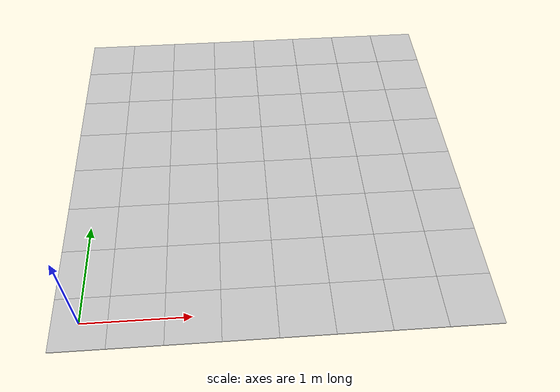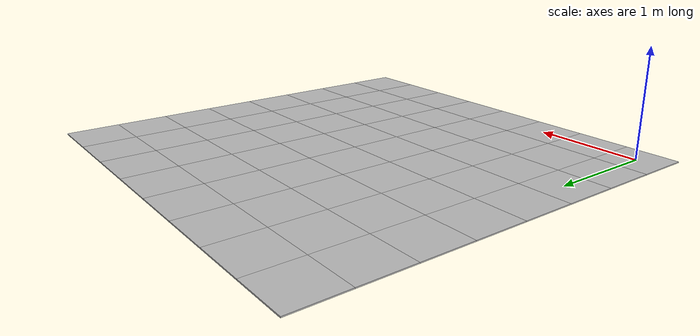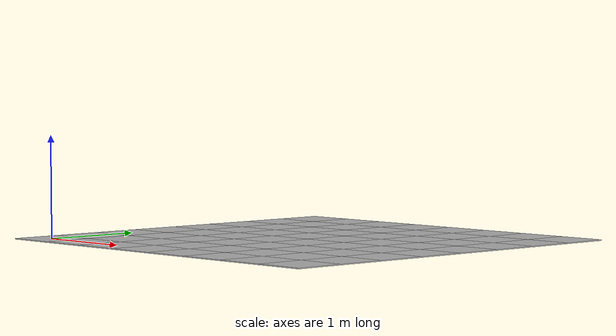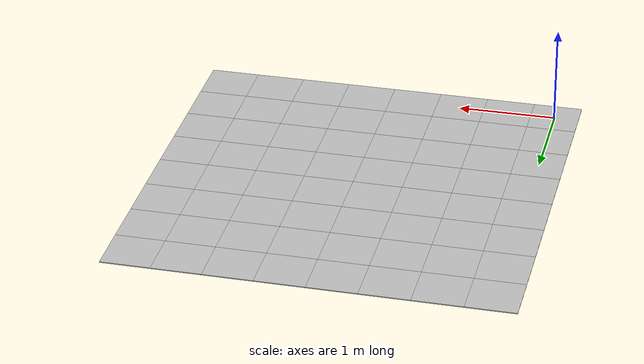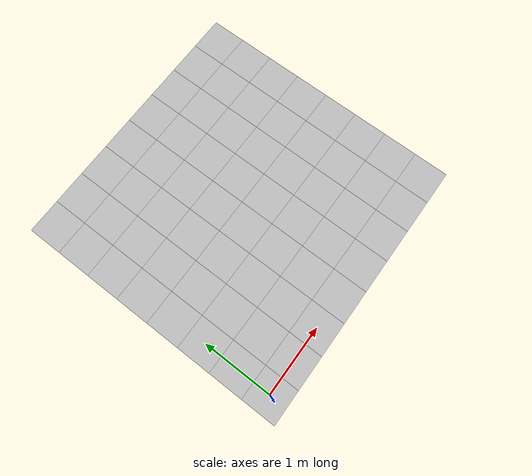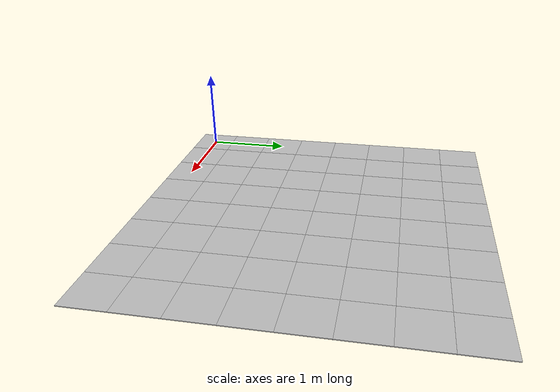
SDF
<?xml version="1.0" ?>
<sdf version="1.5">
  <model name="dia_cr5_arena">
    <static>true</static>
    <link name="link">
      <collision name="surface_collision">
        <pose>1.75 1.75 0 0 0 0 0</pose>
        <geometry>
          <box>
            <size>4.1 4.1 0.01</size>
          </box>
        </geometry>
        <surface>
          <friction>
            <ode>
              <mu>0.20</mu>
              <mu2>0.20</mu2>
            </ode>
          </friction>
        </surface>
      </collision>

      <!-- Floor -->

      <visual name="tile-1">
        <pose>0 0 0 0 0 0 0</pose>
        <geometry>
          <box>
            <size>0.5 0.5 0.01</size>
          </box>
        </geometry>
        <material>
          <script>
            <uri>model://dia_cr5_arena/materials/scripts</uri>
            <uri>model://dia_cr5_arena/materials/textures</uri>
            <name>arena_tile/Diffuse</name>
          </script>
        </material>
      </visual>

      <visual name="tile-2">
        <pose>0.5 0 0 0 0 0 0</pose>
        <geometry>
          <box>
            <size>0.5 0.5 0.01</size>
          </box>
        </geometry>
        <material>
          <script>
            <uri>model://dia_cr5_arena/materials/scripts</uri>
            <uri>model://dia_cr5_arena/materials/textures</uri>
            <name>arena_tile/Diffuse</name>
          </script>
        </material>
      </visual>

      <visual name="tile-3">
        <pose>1 0 0 0 0 0 0</pose>
        <geometry>
          <box>
            <size>0.5 0.5 0.01</size>
          </box>
        </geometry>
        <material>
          <script>
            <uri>model://dia_cr5_arena/materials/scripts</uri>
            <uri>model://dia_cr5_arena/materials/textures</uri>
            <name>arena_tile/Diffuse</name>
          </script>
        </material>
      </visual>

      <visual name="tile-4">
        <pose>1.5 0 0 0 0 0 0</pose>
        <geometry>
          <box>
            <size>0.5 0.5 0.01</size>
          </box>
        </geometry>
        <material>
          <script>
            <uri>model://dia_cr5_arena/materials/scripts</uri>
            <uri>model://dia_cr5_arena/materials/textures</uri>
            <name>arena_tile/Diffuse</name>
          </script>
        </material>
      </visual>

      <visual name="tile-5">
        <pose>2 0 0 0 0 0 0</pose>
        <geometry>
          <box>
            <size>0.5 0.5 0.01</size>
          </box>
        </geometry>
        <material>
          <script>
            <uri>model://dia_cr5_arena/materials/scripts</uri>
            <uri>model://dia_cr5_arena/materials/textures</uri>
            <name>arena_tile/Diffuse</name>
          </script>
        </material>
      </visual>

      <visual name="tile-6">
        <pose>2.5 0 0 0 0 0 0</pose>
        <geometry>
          <box>
            <size>0.5 0.5 0.01</size>
          </box>
        </geometry>
        <material>
          <script>
            <uri>model://dia_cr5_arena/materials/scripts</uri>
            <uri>model://dia_cr5_arena/materials/textures</uri>
            <name>arena_tile/Diffuse</name>
          </script>
        </material>
      </visual>

      <visual name="tile-7">
        <pose>3 0 0 0 0 0 0</pose>
        <geometry>
          <box>
            <size>0.5 0.5 0.01</size>
          </box>
        </geometry>
        <material>
          <script>
            <uri>model://dia_cr5_arena/materials/scripts</uri>
            <uri>model://dia_cr5_arena/materials/textures</uri>
            <name>arena_tile/Diffuse</name>
          </script>
        </material>
      </visual>

      <visual name="tile-8">
        <pose>3.5 0 0 0 0 0 0</pose>
        <geometry>
          <box>
            <size>0.5 0.5 0.01</size>
          </box>
        </geometry>
        <material>
          <script>
            <uri>model://dia_cr5_arena/materials/scripts</uri>
            <uri>model://dia_cr5_arena/materials/textures</uri>
            <name>arena_tile/Diffuse</name>
          </script>
        </material>
      </visual>

      <visual name="tile-9">
        <pose>0 0.5 0 0 0 0 0</pose>
        <geometry>
          <box>
            <size>0.5 0.5 0.01</size>
          </box>
        </geometry>
        <material>
          <script>
            <uri>model://dia_cr5_arena/materials/scripts</uri>
            <uri>model://dia_cr5_arena/materials/textures</uri>
            <name>arena_tile/Diffuse</name>
          </script>
        </material>
      </visual>

      <visual name="tile-10">
        <pose>0.5 0.5 0 0 0 0 0</pose>
        <geometry>
          <box>
            <size>0.5 0.5 0.01</size>
          </box>
        </geometry>
        <material>
          <script>
            <uri>model://dia_cr5_arena/materials/scripts</uri>
            <uri>model://dia_cr5_arena/materials/textures</uri>
            <name>arena_tile/Diffuse</name>
          </script>
        </material>
      </visual>

      <visual name="tile-11">
        <pose>1 0.5 0 0 0 0 0</pose>
        <geometry>
          <box>
            <size>0.5 0.5 0.01</size>
          </box>
        </geometry>
        <material>
          <script>
            <uri>model://dia_cr5_arena/materials/scripts</uri>
            <uri>model://dia_cr5_arena/materials/textures</uri>
            <name>arena_tile/Diffuse</name>
          </script>
        </material>
      </visual>

      <visual name="tile-12">
        <pose>1.5 0.5 0 0 0 0 0</pose>
        <geometry>
          <box>
            <size>0.5 0.5 0.01</size>
          </box>
        </geometry>
        <material>
          <script>
            <uri>model://dia_cr5_arena/materials/scripts</uri>
            <uri>model://dia_cr5_arena/materials/textures</uri>
            <name>arena_tile/Diffuse</name>
          </script>
        </material>
      </visual>

      <visual name="tile-13">
        <pose>2 0.5 0 0 0 0 0</pose>
        <geometry>
          <box>
            <size>0.5 0.5 0.01</size>
          </box>
        </geometry>
        <material>
          <script>
            <uri>model://dia_cr5_arena/materials/scripts</uri>
            <uri>model://dia_cr5_arena/materials/textures</uri>
            <name>arena_tile/Diffuse</name>
          </script>
        </material>
      </visual>

      <visual name="tile-14">
        <pose>2.5 0.5 0 0 0 0 0</pose>
        <geometry>
          <box>
            <size>0.5 0.5 0.01</size>
          </box>
        </geometry>
        <material>
          <script>
            <uri>model://dia_cr5_arena/materials/scripts</uri>
            <uri>model://dia_cr5_arena/materials/textures</uri>
            <name>arena_tile/Diffuse</name>
          </script>
        </material>
      </visual>

      <visual name="tile-15">
        <pose>3 0.5 0 0 0 0 0</pose>
        <geometry>
          <box>
            <size>0.5 0.5 0.01</size>
          </box>
        </geometry>
        <material>
          <script>
            <uri>model://dia_cr5_arena/materials/scripts</uri>
            <uri>model://dia_cr5_arena/materials/textures</uri>
            <name>arena_tile/Diffuse</name>
          </script>
        </material>
      </visual>

      <visual name="tile-16">
        <pose>3.5 0.5 0 0 0 0 0</pose>
        <geometry>
          <box>
            <size>0.5 0.5 0.01</size>
          </box>
        </geometry>
        <material>
          <script>
            <uri>model://dia_cr5_arena/materials/scripts</uri>
            <uri>model://dia_cr5_arena/materials/textures</uri>
            <name>arena_tile/Diffuse</name>
          </script>
        </material>
      </visual>

      <visual name="tile-17">
        <pose>0 1 0 0 0 0 0</pose>
        <geometry>
          <box>
            <size>0.5 0.5 0.01</size>
          </box>
        </geometry>
        <material>
          <script>
            <uri>model://dia_cr5_arena/materials/scripts</uri>
            <uri>model://dia_cr5_arena/materials/textures</uri>
            <name>arena_tile/Diffuse</name>
          </script>
        </material>
      </visual>

      <visual name="tile-18">
        <pose>0.5 1 0 0 0 0 0</pose>
        <geometry>
          <box>
            <size>0.5 0.5 0.01</size>
          </box>
        </geometry>
        <material>
          <script>
            <uri>model://dia_cr5_arena/materials/scripts</uri>
            <uri>model://dia_cr5_arena/materials/textures</uri>
            <name>arena_tile/Diffuse</name>
          </script>
        </material>
      </visual>

      <visual name="tile-19">
        <pose>1 1 0 0 0 0 0</pose>
        <geometry>
          <box>
            <size>0.5 0.5 0.01</size>
          </box>
        </geometry>
        <material>
          <script>
            <uri>model://dia_cr5_arena/materials/scripts</uri>
            <uri>model://dia_cr5_arena/materials/textures</uri>
            <name>arena_tile/Diffuse</name>
          </script>
        </material>
      </visual>

      <visual name="tile-20">
        <pose>1.5 1 0 0 0 0 0</pose>
        <geometry>
          <box>
            <size>0.5 0.5 0.01</size>
          </box>
        </geometry>
        <material>
          <script>
            <uri>model://dia_cr5_arena/materials/scripts</uri>
            <uri>model://dia_cr5_arena/materials/textures</uri>
            <name>arena_tile/Diffuse</name>
          </script>
        </material>
      </visual>

      <visual name="tile-21">
        <pose>2 1 0 0 0 0 0</pose>
        <geometry>
          <box>
            <size>0.5 0.5 0.01</size>
          </box>
        </geometry>
        <material>
          <script>
            <uri>model://dia_cr5_arena/materials/scripts</uri>
            <uri>model://dia_cr5_arena/materials/textures</uri>
            <name>arena_tile/Diffuse</name>
          </script>
        </material>
      </visual>

      <visual name="tile-22">
        <pose>2.5 1 0 0 0 0 0</pose>
        <geometry>
          <box>
            <size>0.5 0.5 0.01</size>
          </box>
        </geometry>
        <material>
          <script>
            <uri>model://dia_cr5_arena/materials/scripts</uri>
            <uri>model://dia_cr5_arena/materials/textures</uri>
            <name>arena_tile/Diffuse</name>
          </script>
        </material>
      </visual>

      <visual name="tile-23">
        <pose>3 1 0 0 0 0 0</pose>
        <geometry>
          <box>
            <size>0.5 0.5 0.01</size>
          </box>
        </geometry>
        <material>
          <script>
            <uri>model://dia_cr5_arena/materials/scripts</uri>
            <uri>model://dia_cr5_arena/materials/textures</uri>
            <name>arena_tile/Diffuse</name>
          </script>
        </material>
      </visual>

      <visual name="tile-24">
        <pose>3.5 1 0 0 0 0 0</pose>
        <geometry>
          <box>
            <size>0.5 0.5 0.01</size>
          </box>
        </geometry>
        <material>
          <script>
            <uri>model://dia_cr5_arena/materials/scripts</uri>
            <uri>model://dia_cr5_arena/materials/textures</uri>
            <name>arena_tile/Diffuse</name>
          </script>
        </material>
      </visual>

      <visual name="tile-25">
        <pose>0 1.5 0 0 0 0 0</pose>
        <geometry>
          <box>
            <size>0.5 0.5 0.01</size>
          </box>
        </geometry>
        <material>
          <script>
            <uri>model://dia_cr5_arena/materials/scripts</uri>
            <uri>model://dia_cr5_arena/materials/textures</uri>
            <name>arena_tile/Diffuse</name>
          </script>
        </material>
      </visual>

      <visual name="tile-26">
        <pose>0.5 1.5 0 0 0 0 0</pose>
        <geometry>
          <box>
            <size>0.5 0.5 0.01</size>
          </box>
        </geometry>
        <material>
          <script>
            <uri>model://dia_cr5_arena/materials/scripts</uri>
            <uri>model://dia_cr5_arena/materials/textures</uri>
            <name>arena_tile/Diffuse</name>
          </script>
        </material>
      </visual>

      <visual name="tile-27">
        <pose>1 1.5 0 0 0 0 0</pose>
        <geometry>
          <box>
            <size>0.5 0.5 0.01</size>
          </box>
        </geometry>
        <material>
          <script>
            <uri>model://dia_cr5_arena/materials/scripts</uri>
            <uri>model://dia_cr5_arena/materials/textures</uri>
            <name>arena_tile/Diffuse</name>
          </script>
        </material>
      </visual>

      <visual name="tile-28">
        <pose>1.5 1.5 0 0 0 0 0</pose>
        <geometry>
          <box>
            <size>0.5 0.5 0.01</size>
          </box>
        </geometry>
        <material>
          <script>
            <uri>model://dia_cr5_arena/materials/scripts</uri>
            <uri>model://dia_cr5_arena/materials/textures</uri>
            <name>arena_tile/Diffuse</name>
          </script>
        </material>
      </visual>

      <visual name="tile-29">
        <pose>2 1.5 0 0 0 0 0</pose>
        <geometry>
          <box>
            <size>0.5 0.5 0.01</size>
          </box>
        </geometry>
        <material>
          <script>
            <uri>model://dia_cr5_arena/materials/scripts</uri>
            <uri>model://dia_cr5_arena/materials/textures</uri>
            <name>arena_tile/Diffuse</name>
          </script>
        </material>
      </visual>

      <visual name="tile-30">
        <pose>2.5 1.5 0 0 0 0 0</pose>
        <geometry>
          <box>
            <size>0.5 0.5 0.01</size>
          </box>
        </geometry>
        <material>
          <script>
            <uri>model://dia_cr5_arena/materials/scripts</uri>
            <uri>model://dia_cr5_arena/materials/textures</uri>
            <name>arena_tile/Diffuse</name>
          </script>
        </material>
      </visual>

      <visual name="tile-31">
        <pose>3 1.5 0 0 0 0 0</pose>
        <geometry>
          <box>
            <size>0.5 0.5 0.01</size>
          </box>
        </geometry>
        <material>
          <script>
            <uri>model://dia_cr5_arena/materials/scripts</uri>
            <uri>model://dia_cr5_arena/materials/textures</uri>
            <name>arena_tile/Diffuse</name>
          </script>
        </material>
      </visual>

      <visual name="tile-32">
        <pose>3.5 1.5 0 0 0 0 0</pose>
        <geometry>
          <box>
            <size>0.5 0.5 0.01</size>
          </box>
        </geometry>
        <material>
          <script>
            <uri>model://dia_cr5_arena/materials/scripts</uri>
            <uri>model://dia_cr5_arena/materials/textures</uri>
            <name>arena_tile/Diffuse</name>
          </script>
        </material>
      </visual>

      <visual name="tile-33">
        <pose>0 2 0 0 0 0 0</pose>
        <geometry>
          <box>
            <size>0.5 0.5 0.01</size>
          </box>
        </geometry>
        <material>
          <script>
            <uri>model://dia_cr5_arena/materials/scripts</uri>
            <uri>model://dia_cr5_arena/materials/textures</uri>
            <name>arena_tile/Diffuse</name>
          </script>
        </material>
      </visual>

      <visual name="tile-34">
        <pose>0.5 2 0 0 0 0 0</pose>
        <geometry>
          <box>
            <size>0.5 0.5 0.01</size>
          </box>
        </geometry>
        <material>
          <script>
            <uri>model://dia_cr5_arena/materials/scripts</uri>
            <uri>model://dia_cr5_arena/materials/textures</uri>
            <name>arena_tile/Diffuse</name>
          </script>
        </material>
      </visual>

      <visual name="tile-35">
        <pose>1 2 0 0 0 0 0</pose>
        <geometry>
          <box>
            <size>0.5 0.5 0.01</size>
          </box>
        </geometry>
        <material>
          <script>
            <uri>model://dia_cr5_arena/materials/scripts</uri>
            <uri>model://dia_cr5_arena/materials/textures</uri>
            <name>arena_tile/Diffuse</name>
          </script>
        </material>
      </visual>

      <visual name="tile-36">
        <pose>1.5 2 0 0 0 0 0</pose>
        <geometry>
          <box>
            <size>0.5 0.5 0.01</size>
          </box>
        </geometry>
        <material>
          <script>
            <uri>model://dia_cr5_arena/materials/scripts</uri>
            <uri>model://dia_cr5_arena/materials/textures</uri>
            <name>arena_tile/Diffuse</name>
          </script>
        </material>
      </visual>

      <visual name="tile-37">
        <pose>2 2 0 0 0 0 0</pose>
        <geometry>
          <box>
            <size>0.5 0.5 0.01</size>
          </box>
        </geometry>
        <material>
          <script>
            <uri>model://dia_cr5_arena/materials/scripts</uri>
            <uri>model://dia_cr5_arena/materials/textures</uri>
            <name>arena_tile/Diffuse</name>
          </script>
        </material>
      </visual>

      <visual name="tile-38">
        <pose>2.5 2 0 0 0 0 0</pose>
        <geometry>
          <box>
            <size>0.5 0.5 0.01</size>
          </box>
        </geometry>
        <material>
          <script>
            <uri>model://dia_cr5_arena/materials/scripts</uri>
            <uri>model://dia_cr5_arena/materials/textures</uri>
            <name>arena_tile/Diffuse</name>
          </script>
        </material>
      </visual>

      <visual name="tile-39">
        <pose>3 2 0 0 0 0 0</pose>
        <geometry>
          <box>
            <size>0.5 0.5 0.01</size>
          </box>
        </geometry>
        <material>
          <script>
            <uri>model://dia_cr5_arena/materials/scripts</uri>
            <uri>model://dia_cr5_arena/materials/textures</uri>
            <name>arena_tile/Diffuse</name>
          </script>
        </material>
      </visual>

      <visual name="tile-40">
        <pose>3.5 2 0 0 0 0 0</pose>
        <geometry>
          <box>
            <size>0.5 0.5 0.01</size>
          </box>
        </geometry>
        <material>
          <script>
            <uri>model://dia_cr5_arena/materials/scripts</uri>
            <uri>model://dia_cr5_arena/materials/textures</uri>
            <name>arena_tile/Diffuse</name>
          </script>
        </material>
      </visual>

      <visual name="tile-41">
        <pose>0 2.5 0 0 0 0 0</pose>
        <geometry>
          <box>
            <size>0.5 0.5 0.01</size>
          </box>
        </geometry>
        <material>
          <script>
            <uri>model://dia_cr5_arena/materials/scripts</uri>
            <uri>model://dia_cr5_arena/materials/textures</uri>
            <name>arena_tile/Diffuse</name>
          </script>
        </material>
      </visual>

      <visual name="tile-42">
        <pose>0.5 2.5 0 0 0 0 0</pose>
        <geometry>
          <box>
            <size>0.5 0.5 0.01</size>
          </box>
        </geometry>
        <material>
          <script>
            <uri>model://dia_cr5_arena/materials/scripts</uri>
            <uri>model://dia_cr5_arena/materials/textures</uri>
            <name>arena_tile/Diffuse</name>
          </script>
        </material>
      </visual>

      <visual name="tile-43">
        <pose>1 2.5 0 0 0 0 0</pose>
        <geometry>
          <box>
            <size>0.5 0.5 0.01</size>
          </box>
        </geometry>
        <material>
          <script>
            <uri>model://dia_cr5_arena/materials/scripts</uri>
            <uri>model://dia_cr5_arena/materials/textures</uri>
            <name>arena_tile/Diffuse</name>
          </script>
        </material>
      </visual>

      <visual name="tile-44">
        <pose>1.5 2.5 0 0 0 0 0</pose>
        <geometry>
          <box>
            <size>0.5 0.5 0.01</size>
          </box>
        </geometry>
        <material>
          <script>
            <uri>model://dia_cr5_arena/materials/scripts</uri>
            <uri>model://dia_cr5_arena/materials/textures</uri>
            <name>arena_tile/Diffuse</name>
          </script>
        </material>
      </visual>

      <visual name="tile-45">
        <pose>2 2.5 0 0 0 0 0</pose>
        <geometry>
          <box>
            <size>0.5 0.5 0.01</size>
          </box>
        </geometry>
        <material>
          <script>
            <uri>model://dia_cr5_arena/materials/scripts</uri>
            <uri>model://dia_cr5_arena/materials/textures</uri>
            <name>arena_tile/Diffuse</name>
          </script>
        </material>
      </visual>

      <visual name="tile-46">
        <pose>2.5 2.5 0 0 0 0 0</pose>
        <geometry>
          <box>
            <size>0.5 0.5 0.01</size>
          </box>
        </geometry>
        <material>
          <script>
            <uri>model://dia_cr5_arena/materials/scripts</uri>
            <uri>model://dia_cr5_arena/materials/textures</uri>
            <name>arena_tile/Diffuse</name>
          </script>
        </material>
      </visual>

      <visual name="tile-47">
        <pose>3 2.5 0 0 0 0 0</pose>
        <geometry>
          <box>
            <size>0.5 0.5 0.01</size>
          </box>
        </geometry>
        <material>
          <script>
            <uri>model://dia_cr5_arena/materials/scripts</uri>
            <uri>model://dia_cr5_arena/materials/textures</uri>
            <name>arena_tile/Diffuse</name>
          </script>
        </material>
      </visual>

      <visual name="tile-48">
        <pose>3.5 2.5 0 0 0 0 0</pose>
        <geometry>
          <box>
            <size>0.5 0.5 0.01</size>
          </box>
        </geometry>
        <material>
          <script>
            <uri>model://dia_cr5_arena/materials/scripts</uri>
            <uri>model://dia_cr5_arena/materials/textures</uri>
            <name>arena_tile/Diffuse</name>
          </script>
        </material>
      </visual>

      <visual name="tile-49">
        <pose>0 3 0 0 0 0 0</pose>
        <geometry>
          <box>
            <size>0.5 0.5 0.01</size>
          </box>
        </geometry>
        <material>
          <script>
            <uri>model://dia_cr5_arena/materials/scripts</uri>
            <uri>model://dia_cr5_arena/materials/textures</uri>
            <name>arena_tile/Diffuse</name>
          </script>
        </material>
      </visual>

      <visual name="tile-50">
        <pose>0.5 3 0 0 0 0 0</pose>
        <geometry>
          <box>
            <size>0.5 0.5 0.01</size>
          </box>
        </geometry>
        <material>
          <script>
            <uri>model://dia_cr5_arena/materials/scripts</uri>
            <uri>model://dia_cr5_arena/materials/textures</uri>
            <name>arena_tile/Diffuse</name>
          </script>
        </material>
      </visual>

      <visual name="tile-51">
        <pose>1 3 0 0 0 0 0</pose>
        <geometry>
          <box>
            <size>0.5 0.5 0.01</size>
          </box>
        </geometry>
        <material>
          <script>
            <uri>model://dia_cr5_arena/materials/scripts</uri>
            <uri>model://dia_cr5_arena/materials/textures</uri>
            <name>arena_tile/Diffuse</name>
          </script>
        </material>
      </visual>

      <visual name="tile-52">
        <pose>1.5 3 0 0 0 0 0</pose>
        <geometry>
          <box>
            <size>0.5 0.5 0.01</size>
          </box>
        </geometry>
        <material>
          <script>
            <uri>model://dia_cr5_arena/materials/scripts</uri>
            <uri>model://dia_cr5_arena/materials/textures</uri>
            <name>arena_tile/Diffuse</name>
          </script>
        </material>
      </visual>

      <visual name="tile-53">
        <pose>2 3 0 0 0 0 0</pose>
        <geometry>
          <box>
            <size>0.5 0.5 0.01</size>
          </box>
        </geometry>
        <material>
          <script>
            <uri>model://dia_cr5_arena/materials/scripts</uri>
            <uri>model://dia_cr5_arena/materials/textures</uri>
            <name>arena_tile/Diffuse</name>
          </script>
        </material>
      </visual>

      <visual name="tile-54">
        <pose>2.5 3 0 0 0 0 0</pose>
        <geometry>
          <box>
            <size>0.5 0.5 0.01</size>
          </box>
        </geometry>
        <material>
          <script>
            <uri>model://dia_cr5_arena/materials/scripts</uri>
            <uri>model://dia_cr5_arena/materials/textures</uri>
            <name>arena_tile/Diffuse</name>
          </script>
        </material>
      </visual>

      <visual name="tile-55">
        <pose>3 3 0 0 0 0 0</pose>
        <geometry>
          <box>
            <size>0.5 0.5 0.01</size>
          </box>
        </geometry>
        <material>
          <script>
            <uri>model://dia_cr5_arena/materials/scripts</uri>
            <uri>model://dia_cr5_arena/materials/textures</uri>
            <name>arena_tile/Diffuse</name>
          </script>
        </material>
      </visual>

      <visual name="tile-56">
        <pose>3.5 3 0 0 0 0 0</pose>
        <geometry>
          <box>
            <size>0.5 0.5 0.01</size>
          </box>
        </geometry>
        <material>
          <script>
            <uri>model://dia_cr5_arena/materials/scripts</uri>
            <uri>model://dia_cr5_arena/materials/textures</uri>
            <name>arena_tile/Diffuse</name>
          </script>
        </material>
      </visual>

      <visual name="tile-57">
        <pose>0 3.5 0 0 0 0 0</pose>
        <geometry>
          <box>
            <size>0.5 0.5 0.01</size>
          </box>
        </geometry>
        <material>
          <script>
            <uri>model://dia_cr5_arena/materials/scripts</uri>
            <uri>model://dia_cr5_arena/materials/textures</uri>
            <name>arena_tile/Diffuse</name>
          </script>
        </material>
      </visual>

      <visual name="tile-58">
        <pose>0.5 3.5 0 0 0 0 0</pose>
        <geometry>
          <box>
            <size>0.5 0.5 0.01</size>
          </box>
        </geometry>
        <material>
          <script>
            <uri>model://dia_cr5_arena/materials/scripts</uri>
            <uri>model://dia_cr5_arena/materials/textures</uri>
            <name>arena_tile/Diffuse</name>
          </script>
        </material>
      </visual>

      <visual name="tile-59">
        <pose>1 3.5 0 0 0 0 0</pose>
        <geometry>
          <box>
            <size>0.5 0.5 0.01</size>
          </box>
        </geometry>
        <material>
          <script>
            <uri>model://dia_cr5_arena/materials/scripts</uri>
            <uri>model://dia_cr5_arena/materials/textures</uri>
            <name>arena_tile/Diffuse</name>
          </script>
        </material>
      </visual>

      <visual name="tile-60">
        <pose>1.5 3.5 0 0 0 0 0</pose>
        <geometry>
          <box>
            <size>0.5 0.5 0.01</size>
          </box>
        </geometry>
        <material>
          <script>
            <uri>model://dia_cr5_arena/materials/scripts</uri>
            <uri>model://dia_cr5_arena/materials/textures</uri>
            <name>arena_tile/Diffuse</name>
          </script>
        </material>
      </visual>

      <visual name="tile-61">
        <pose>2 3.5 0 0 0 0 0</pose>
        <geometry>
          <box>
            <size>0.5 0.5 0.01</size>
          </box>
        </geometry>
        <material>
          <script>
            <uri>model://dia_cr5_arena/materials/scripts</uri>
            <uri>model://dia_cr5_arena/materials/textures</uri>
            <name>arena_tile/Diffuse</name>
          </script>
        </material>
      </visual>

      <visual name="tile-62">
        <pose>2.5 3.5 0 0 0 0 0</pose>
        <geometry>
          <box>
            <size>0.5 0.5 0.01</size>
          </box>
        </geometry>
        <material>
          <script>
            <uri>model://dia_cr5_arena/materials/scripts</uri>
            <uri>model://dia_cr5_arena/materials/textures</uri>
            <name>arena_tile/Diffuse</name>
          </script>
        </material>
      </visual>

      <visual name="tile-63">
        <pose>3 3.5 0 0 0 0 0</pose>
        <geometry>
          <box>
            <size>0.5 0.5 0.01</size>
          </box>
        </geometry>
        <material>
          <script>
            <uri>model://dia_cr5_arena/materials/scripts</uri>
            <uri>model://dia_cr5_arena/materials/textures</uri>
            <name>arena_tile/Diffuse</name>
          </script>
        </material>
      </visual>

      <visual name="tile-64">
        <pose>3.5 3.5 0 0 0 0 0</pose>
        <geometry>
          <box>
            <size>0.5 0.5 0.01</size>
          </box>
        </geometry>
        <material>
          <script>
            <uri>model://dia_cr5_arena/materials/scripts</uri>
            <uri>model://dia_cr5_arena/materials/textures</uri>
            <name>arena_tile/Diffuse</name>
          </script>
        </material>
      </visual>

    </link>
  </model>
</sdf>
